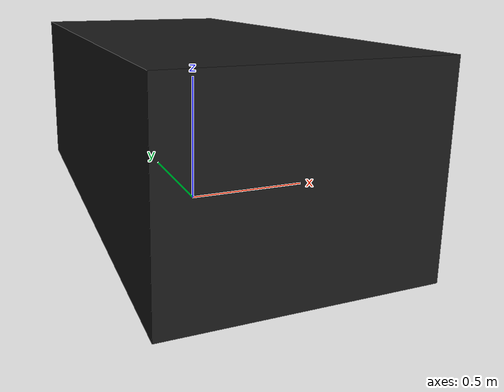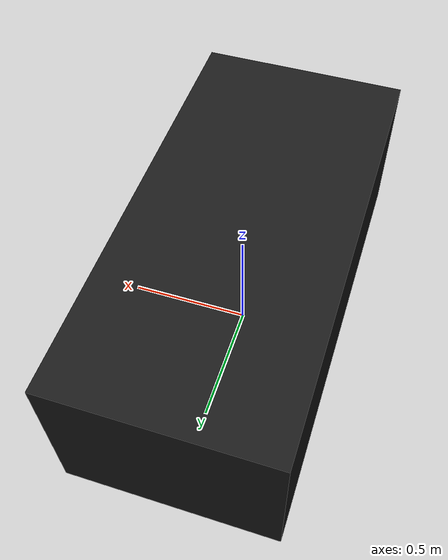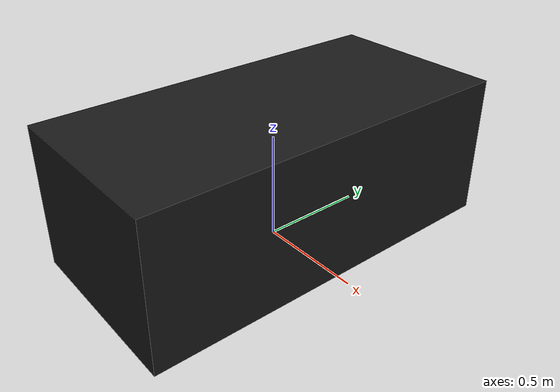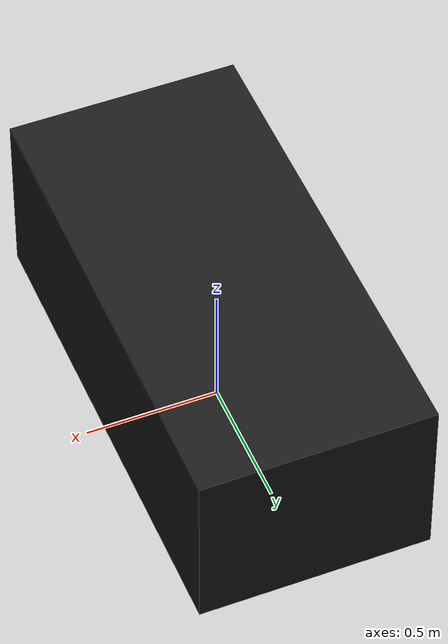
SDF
<?xml version="1.0"?>
<sdf version="1.6">
  <model name="rgo2015/couch">
    <link name="1_link">
      <collision name="1_col">
        <geometry>
          <box>
            <size>0.865 1.8 0.67</size>
          </box>
        </geometry>
      </collision>
      <visual name="1_vis">
        <geometry>
          <box>
            <size>0.865 1.8 0.67</size>
          </box>
        </geometry>
        <material>
          <ambient>0.1 0.1 0.1 1</ambient>
        </material>
      </visual>
      <pose>0.0 0.0 0.335 0 0 0</pose>
    </link>
    <static>true</static>
  </model>
</sdf>
